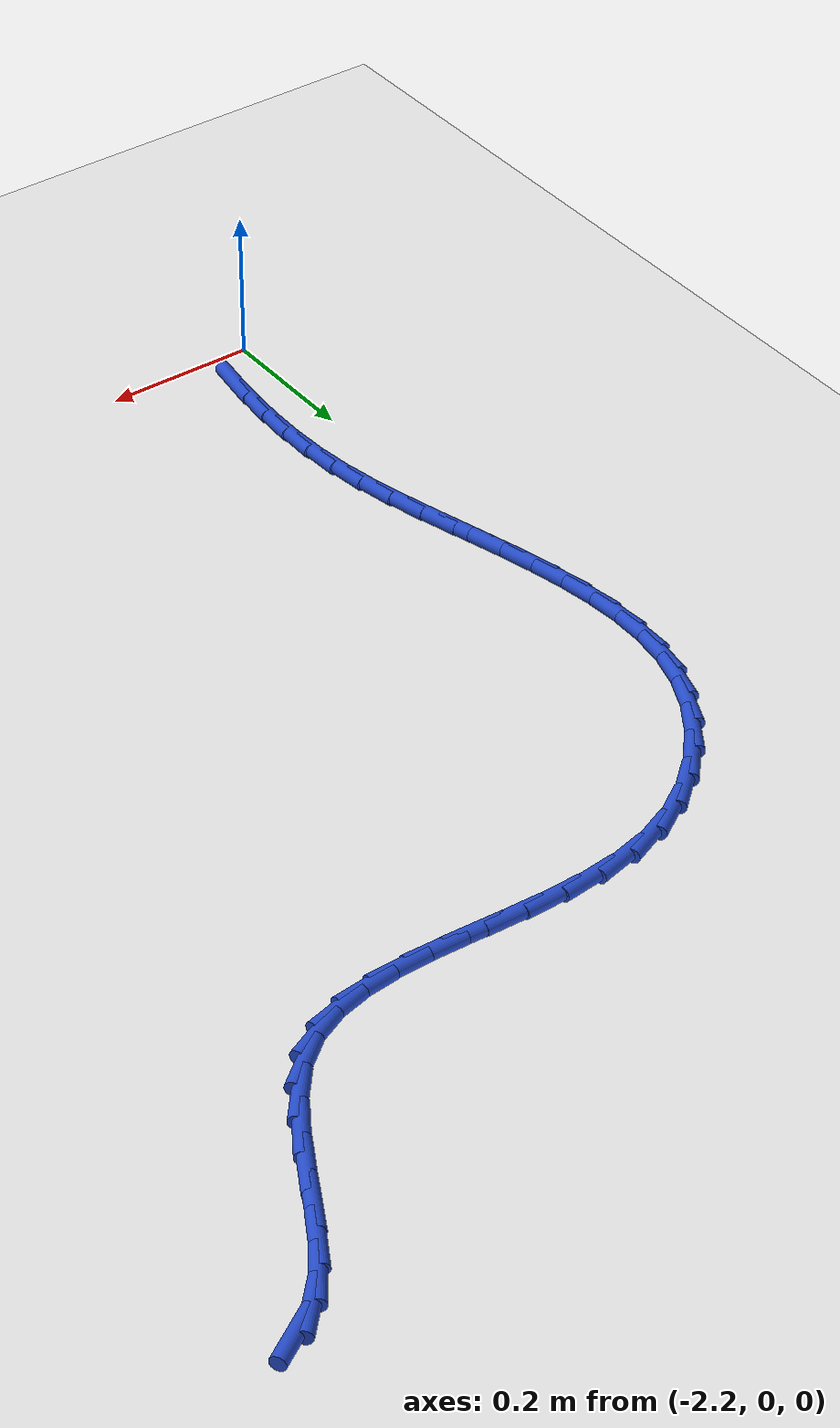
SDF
<sdf version="1.6">
 <world name="default">
  <model name="ground_plane">
   <static>1</static>
   <link name="link">
    <collision name="collision">
     <geometry><plane><normal>0 0 1</normal><size>100 100</size></plane></geometry>
     <surface><friction><ode><mu>100</mu><mu2>50</mu2></ode></friction></surface>
    </collision>
    <visual name="visual">
     <cast_shadows>0</cast_shadows>
     <geometry><plane><normal>0 0 1</normal><size>100 100</size></plane></geometry>
     <material>
      <script><uri>file://media/materials/scripts/gazebo.material</uri><name>Gazebo/WhiteGlow</name></script>
     </material>
    </visual>
   </link>
  </model>
  <model name="line">
   <link name="link_45">
    <pose>-1.2663418286828123 1.4529561932144455 0.01 0 1.57 0.5398186192638539</pose>
    <collision name="collision">
     <geometry><cylinder><radius>0.01</radius><length>0.08</length></cylinder></geometry>
    </collision>
    <visual name="visual">
     <material>
      <script><name>Gazebo/Blue</name><uri>file://media/materials/scripts/gazebo.material</uri></script>
     </material>
     <geometry><cylinder><radius>0.01</radius><length>0.08</length></cylinder></geometry>
    </visual>
   </link>
   <link name="link_46">
    <pose>-1.3000085020764252 1.4327836916100332 0.01 0 1.57 0.7994982813043418</pose>
    <collision name="collision">
     <geometry><cylinder><radius>0.01</radius><length>0.08</length></cylinder></geometry>
    </collision>
    <visual name="visual">
     <material>
      <script><name>Gazebo/Blue</name><uri>file://media/materials/scripts/gazebo.material</uri></script>
     </material>
     <geometry><cylinder><radius>0.01</radius><length>0.08</length></cylinder></geometry>
    </visual>
   </link>
   <link name="link_47">
    <pose>-1.3297077006797173 1.4022349334101647 0.01 0 1.57 0.9632050527010525</pose>
    <collision name="collision">
     <geometry><cylinder><radius>0.01</radius><length>0.08</length></cylinder></geometry>
    </collision>
    <visual name="visual">
     <material>
      <script><name>Gazebo/Blue</name><uri>file://media/materials/scripts/gazebo.material</uri></script>
     </material>
     <geometry><cylinder><radius>0.01</radius><length>0.08</length></cylinder></geometry>
    </visual>
   </link>
   <link name="link_48">
    <pose>-1.3564979605696286 1.363706618796815 0.01 0 1.57 1.0490110748656216</pose>
    <collision name="collision">
     <geometry><cylinder><radius>0.01</radius><length>0.08</length></cylinder></geometry>
    </collision>
    <visual name="visual">
     <material>
      <script><name>Gazebo/Blue</name><uri>file://media/materials/scripts/gazebo.material</uri></script>
     </material>
     <geometry><cylinder><radius>0.01</radius><length>0.08</length></cylinder></geometry>
    </visual>
   </link>
   <link name="link_49">
    <pose>-1.3816116969503112 1.3200255997518338 0.01 0 1.57 1.0785972706311933</pose>
    <collision name="collision">
     <geometry><cylinder><radius>0.01</radius><length>0.08</length></cylinder></geometry>
    </collision>
    <visual name="visual">
     <material>
      <script><name>Gazebo/Blue</name><uri>file://media/materials/scripts/gazebo.material</uri></script>
     </material>
     <geometry><cylinder><radius>0.01</radius><length>0.08</length></cylinder></geometry>
    </visual>
   </link>
   <link name="link_50">
    <pose>-1.406281325025917 1.2740187282570699 0.01 0 1.57 1.0607322408314315</pose>
    <collision name="collision">
     <geometry><cylinder><radius>0.01</radius><length>0.08</length></cylinder></geometry>
    </collision>
    <visual name="visual">
     <material>
      <script><name>Gazebo/Blue</name><uri>file://media/materials/scripts/gazebo.material</uri></script>
     </material>
     <geometry><cylinder><radius>0.01</radius><length>0.08</length></cylinder></geometry>
    </visual>
   </link>
   <link name="link_51">
    <pose>-1.431739260000597 1.228512856294374 0.01 0 1.57 0.9933727275090164</pose>
    <collision name="collision">
     <geometry><cylinder><radius>0.01</radius><length>0.08</length></cylinder></geometry>
    </collision>
    <visual name="visual">
     <material>
      <script><name>Gazebo/Blue</name><uri>file://media/materials/scripts/gazebo.material</uri></script>
     </material>
     <geometry><cylinder><radius>0.01</radius><length>0.08</length></cylinder></geometry>
    </visual>
   </link>
   <link name="link_52">
    <pose>-1.4592179170785027 1.1863348358455943 0.01 0 1.57 0.8645004404029248</pose>
    <collision name="collision">
     <geometry><cylinder><radius>0.01</radius><length>0.08</length></cylinder></geometry>
    </collision>
    <visual name="visual">
     <material>
      <script><name>Gazebo/Blue</name><uri>file://media/materials/scripts/gazebo.material</uri></script>
     </material>
     <geometry><cylinder><radius>0.01</radius><length>0.08</length></cylinder></geometry>
    </visual>
   </link>
   <link name="link_53">
    <pose>-1.489949711463786 1.1503115188925819 0.01 0 1.57 0.657821341731498</pose>
    <collision name="collision">
     <geometry><cylinder><radius>0.01</radius><length>0.08</length></cylinder></geometry>
    </collision>
    <visual name="visual">
     <material>
      <script><name>Gazebo/Blue</name><uri>file://media/materials/scripts/gazebo.material</uri></script>
     </material>
     <geometry><cylinder><radius>0.01</radius><length>0.08</length></cylinder></geometry>
    </visual>
   </link>
   <link name="link_54">
    <pose>-1.5251125351433734 1.123144023288106 0.01 0 1.57 0.4234418613173065</pose>
    <collision name="collision">
     <geometry><cylinder><radius>0.01</radius><length>0.08</length></cylinder></geometry>
    </collision>
    <visual name="visual">
     <material>
      <script><name>Gazebo/Blue</name><uri>file://media/materials/scripts/gazebo.material</uri></script>
     </material>
     <geometry><cylinder><radius>0.01</radius><length>0.08</length></cylinder></geometry>
    </visual>
   </link>
   <link name="link_55">
    <pose>-1.5648810920524108 1.105220049181201 0.01 0 1.57 0.23216177421498163</pose>
    <collision name="collision">
     <geometry><cylinder><radius>0.01</radius><length>0.08</length></cylinder></geometry>
    </collision>
    <visual name="visual">
     <material>
      <script><name>Gazebo/Blue</name><uri>file://media/materials/scripts/gazebo.material</uri></script>
     </material>
     <geometry><cylinder><radius>0.01</radius><length>0.08</length></cylinder></geometry>
    </visual>
   </link>
   <link name="link_56">
    <pose>-1.6085491644997822 1.0948958334452192 0.01 0 1.57 0.09446770056954061</pose>
    <collision name="collision">
     <geometry><cylinder><radius>0.01</radius><length>0.08</length></cylinder></geometry>
    </collision>
    <visual name="visual">
     <material>
      <script><name>Gazebo/Blue</name><uri>file://media/materials/scripts/gazebo.material</uri></script>
     </material>
     <geometry><cylinder><radius>0.01</radius><length>0.08</length></cylinder></geometry>
    </visual>
   </link>
   <link name="link_57">
    <pose>-1.6553805944229403 1.0904585684855226 0.01 0 1.57 0.005341587435091712</pose>
    <collision name="collision">
     <geometry><cylinder><radius>0.01</radius><length>0.08</length></cylinder></geometry>
    </collision>
    <visual name="visual">
     <material>
      <script><name>Gazebo/Blue</name><uri>file://media/materials/scripts/gazebo.material</uri></script>
     </material>
     <geometry><cylinder><radius>0.01</radius><length>0.08</length></cylinder></geometry>
    </visual>
   </link>
   <link name="link_58">
    <pose>-1.7046392237593366 1.0901954467074724 0.01 0 1.57 -0.043118067844145326</pose>
    <collision name="collision">
     <geometry><cylinder><radius>0.01</radius><length>0.08</length></cylinder></geometry>
    </collision>
    <visual name="visual">
     <material>
      <script><name>Gazebo/Blue</name><uri>file://media/materials/scripts/gazebo.material</uri></script>
     </material>
     <geometry><cylinder><radius>0.01</radius><length>0.08</length></cylinder></geometry>
    </visual>
   </link>
   <link name="link_59">
    <pose>-1.7555888944464226 1.0923936605164308 0.01 0 1.57 -0.05671144065306227</pose>
    <collision name="collision">
     <geometry><cylinder><radius>0.01</radius><length>0.08</length></cylinder></geometry>
    </collision>
    <visual name="visual">
     <material>
      <script><name>Gazebo/Blue</name><uri>file://media/materials/scripts/gazebo.material</uri></script>
     </material>
     <geometry><cylinder><radius>0.01</radius><length>0.08</length></cylinder></geometry>
    </visual>
   </link>
   <link name="link_60">
    <pose>-1.807493448421651 1.0953404023177602 0.01 0 1.57 -0.038015779506397666</pose>
    <collision name="collision">
     <geometry><cylinder><radius>0.01</radius><length>0.08</length></cylinder></geometry>
    </collision>
    <visual name="visual">
     <material>
      <script><name>Gazebo/Blue</name><uri>file://media/materials/scripts/gazebo.material</uri></script>
     </material>
     <geometry><cylinder><radius>0.01</radius><length>0.08</length></cylinder></geometry>
    </visual>
   </link>
   <link name="link_61">
    <pose>-1.8596167276224738 1.0973228645168218 0.01 0 1.57 0.013459386897508295</pose>
    <collision name="collision">
     <geometry><cylinder><radius>0.01</radius><length>0.08</length></cylinder></geometry>
    </collision>
    <visual name="visual">
     <material>
      <script><name>Gazebo/Blue</name><uri>file://media/materials/scripts/gazebo.material</uri></script>
     </material>
     <geometry><cylinder><radius>0.01</radius><length>0.08</length></cylinder></geometry>
    </visual>
   </link>
   <link name="link_62">
    <pose>-1.911222573986342 1.096628239518978 0.01 0 1.57 0.10063785307828729</pose>
    <collision name="collision">
     <geometry><cylinder><radius>0.01</radius><length>0.08</length></cylinder></geometry>
    </collision>
    <visual name="visual">
     <material>
      <script><name>Gazebo/Blue</name><uri>file://media/materials/scripts/gazebo.material</uri></script>
     </material>
     <geometry><cylinder><radius>0.01</radius><length>0.08</length></cylinder></geometry>
    </visual>
   </link>
   <link name="link_63">
    <pose>-1.9615748294507087 1.0915437197295907 0.01 0 1.57 0.22732184701287741</pose>
    <collision name="collision">
     <geometry><cylinder><radius>0.01</radius><length>0.08</length></cylinder></geometry>
    </collision>
    <visual name="visual">
     <material>
      <script><name>Gazebo/Blue</name><uri>file://media/materials/scripts/gazebo.material</uri></script>
     </material>
     <geometry><cylinder><radius>0.01</radius><length>0.08</length></cylinder></geometry>
    </visual>
   </link>
   <link name="link_64">
    <pose>-2.009937335953025 1.0803564975540216 0.01 0 1.57 0.39228975317552417</pose>
    <collision name="collision">
     <geometry><cylinder><radius>0.01</radius><length>0.08</length></cylinder></geometry>
    </collision>
    <visual name="visual">
     <material>
      <script><name>Gazebo/Blue</name><uri>file://media/materials/scripts/gazebo.material</uri></script>
     </material>
     <geometry><cylinder><radius>0.01</radius><length>0.08</length></cylinder></geometry>
    </visual>
   </link>
   <link name="link_65">
    <pose>-2.0555713598951235 1.0614761463930935 0.01 0 1.57 0.5612290174973782</pose>
    <collision name="collision">
     <geometry><cylinder><radius>0.01</radius><length>0.08</length></cylinder></geometry>
    </collision>
    <visual name="visual">
     <material>
      <script><name>Gazebo/Blue</name><uri>file://media/materials/scripts/gazebo.material</uri></script>
     </material>
     <geometry><cylinder><radius>0.01</radius><length>0.08</length></cylinder></geometry>
    </visual>
   </link>
   <link name="link_66">
    <pose>-2.097702866647926 1.0349896287199445 0.01 0 1.57 0.7141424548129879</pose>
    <collision name="collision">
     <geometry><cylinder><radius>0.01</radius><length>0.08</length></cylinder></geometry>
    </collision>
    <visual name="visual">
     <material>
      <script><name>Gazebo/Blue</name><uri>file://media/materials/scripts/gazebo.material</uri></script>
     </material>
     <geometry><cylinder><radius>0.01</radius><length>0.08</length></cylinder></geometry>
    </visual>
   </link>
   <link name="link_67">
    <pose>-2.1355322124897413 1.0022007669971567 0.01 0 1.57 0.8566821413677169</pose>
    <collision name="collision">
     <geometry><cylinder><radius>0.01</radius><length>0.08</length></cylinder></geometry>
    </collision>
    <visual name="visual">
     <material>
      <script><name>Gazebo/Blue</name><uri>file://media/materials/scripts/gazebo.material</uri></script>
     </material>
     <geometry><cylinder><radius>0.01</radius><length>0.08</length></cylinder></geometry>
    </visual>
   </link>
   <link name="link_68">
    <pose>-2.1682591793660575 0.9644406740970677 0.01 0 1.57 0.9958788411107538</pose>
    <collision name="collision">
     <geometry><cylinder><radius>0.01</radius><length>0.08</length></cylinder></geometry>
    </collision>
    <visual name="visual">
     <material>
      <script><name>Gazebo/Blue</name><uri>file://media/materials/scripts/gazebo.material</uri></script>
     </material>
     <geometry><cylinder><radius>0.01</radius><length>0.08</length></cylinder></geometry>
    </visual>
   </link>
   <link name="link_69">
    <pose>-2.1950835492223617 0.9230404628920175 0.01 0 1.57 1.1393683113650093</pose>
    <collision name="collision">
     <geometry><cylinder><radius>0.01</radius><length>0.08</length></cylinder></geometry>
    </collision>
    <visual name="visual">
     <material>
      <script><name>Gazebo/Blue</name><uri>file://media/materials/scripts/gazebo.material</uri></script>
     </material>
     <geometry><cylinder><radius>0.01</radius><length>0.08</length></cylinder></geometry>
    </visual>
   </link>
   <link name="link_70">
    <pose>-2.215205113431188 0.8793312395615878 0.01 0 1.57 1.2904233244219105</pose>
    <collision name="collision">
     <geometry><cylinder><radius>0.01</radius><length>0.08</length></cylinder></geometry>
    </collision>
    <visual name="visual">
     <material>
      <script><name>Gazebo/Blue</name><uri>file://media/materials/scripts/gazebo.material</uri></script>
     </material>
     <geometry><cylinder><radius>0.01</radius><length>0.08</length></cylinder></geometry>
    </visual>
   </link>
   <link name="link_71">
    <pose>-2.2281372474664867 0.8344214804271715 0.01 0 1.57 1.4320874877064045</pose>
    <collision name="collision">
     <geometry><cylinder><radius>0.01</radius><length>0.08</length></cylinder></geometry>
    </collision>
    <visual name="visual">
     <material>
      <script><name>Gazebo/Blue</name><uri>file://media/materials/scripts/gazebo.material</uri></script>
     </material>
     <geometry><cylinder><radius>0.01</radius><length>0.08</length></cylinder></geometry>
    </visual>
   </link>
   <link name="link_72">
    <pose>-2.2345326646762285 0.7886107858876283 0.01 0 1.57 1.554270748800596</pose>
    <collision name="collision">
     <geometry><cylinder><radius>0.01</radius><length>0.08</length></cylinder></geometry>
    </collision>
    <visual name="visual">
     <material>
      <script><name>Gazebo/Blue</name><uri>file://media/materials/scripts/gazebo.material</uri></script>
     </material>
     <geometry><cylinder><radius>0.01</radius><length>0.08</length></cylinder></geometry>
    </visual>
   </link>
   <link name="link_73">
    <pose>-2.2353027552890388 0.7420151080095314 0.01 0 1.57 -1.4875475170289387</pose>
    <collision name="collision">
     <geometry><cylinder><radius>0.01</radius><length>0.08</length></cylinder></geometry>
    </collision>
    <visual name="visual">
     <material>
      <script><name>Gazebo/Blue</name><uri>file://media/materials/scripts/gazebo.material</uri></script>
     </material>
     <geometry><cylinder><radius>0.01</radius><length>0.08</length></cylinder></geometry>
    </visual>
   </link>
   <link name="link_74">
    <pose>-2.231358909533541 0.6947503988594538 0.01 0 1.57 -1.410193427646849</pose>
    <collision name="collision">
     <geometry><cylinder><radius>0.01</radius><length>0.08</length></cylinder></geometry>
    </collision>
    <visual name="visual">
     <material>
      <script><name>Gazebo/Blue</name><uri>file://media/materials/scripts/gazebo.material</uri></script>
     </material>
     <geometry><cylinder><radius>0.01</radius><length>0.08</length></cylinder></geometry>
    </visual>
   </link>
   <link name="link_75">
    <pose>-2.2236125176383594 0.6469326105039694 0.01 0 1.57 -1.3538217442908465</pose>
    <collision name="collision">
     <geometry><cylinder><radius>0.01</radius><length>0.08</length></cylinder></geometry>
    </collision>
    <visual name="visual">
     <material>
      <script><name>Gazebo/Blue</name><uri>file://media/materials/scripts/gazebo.material</uri></script>
     </material>
     <geometry><cylinder><radius>0.01</radius><length>0.08</length></cylinder></geometry>
    </visual>
   </link>
   <link name="link_76">
    <pose>-2.2129749698321164 0.5986776950096513 0.01 0 1.57 -1.316668740241282</pose>
    <collision name="collision">
     <geometry><cylinder><radius>0.01</radius><length>0.08</length></cylinder></geometry>
    </collision>
    <visual name="visual">
     <material>
      <script><name>Gazebo/Blue</name><uri>file://media/materials/scripts/gazebo.material</uri></script>
     </material>
     <geometry><cylinder><radius>0.01</radius><length>0.08</length></cylinder></geometry>
    </visual>
   </link>
   <link name="link_77">
    <pose>-2.2003576563434373 0.5501016044430723 0.01 0 1.57 -1.2972759444066857</pose>
    <collision name="collision">
     <geometry><cylinder><radius>0.01</radius><length>0.08</length></cylinder></geometry>
    </collision>
    <visual name="visual">
     <material>
      <script><name>Gazebo/Blue</name><uri>file://media/materials/scripts/gazebo.material</uri></script>
     </material>
     <geometry><cylinder><radius>0.01</radius><length>0.08</length></cylinder></geometry>
    </visual>
   </link>
   <link name="link_78">
    <pose>-2.186671967400946 0.5013202908708065 0.01 0 1.57 -1.2947749134154225</pose>
    <collision name="collision">
     <geometry><cylinder><radius>0.01</radius><length>0.08</length></cylinder></geometry>
    </collision>
    <visual name="visual">
     <material>
      <script><name>Gazebo/Blue</name><uri>file://media/materials/scripts/gazebo.material</uri></script>
     </material>
     <geometry><cylinder><radius>0.01</radius><length>0.08</length></cylinder></geometry>
    </visual>
   </link>
   <link name="link_79">
    <pose>-2.1728292932332645 0.4524497063594265 0.01 0 1.57 -1.3089857701829382</pose>
    <collision name="collision">
     <geometry><cylinder><radius>0.01</radius><length>0.08</length></cylinder></geometry>
    </collision>
    <visual name="visual">
     <material>
      <script><name>Gazebo/Blue</name><uri>file://media/materials/scripts/gazebo.material</uri></script>
     </material>
     <geometry><cylinder><radius>0.01</radius><length>0.08</length></cylinder></geometry>
    </visual>
   </link>
   <link name="link_80">
    <pose>-2.159741024069018 0.4036058029755064 0.01 0 1.57 -1.3404188184969796</pose>
    <collision name="collision">
     <geometry><cylinder><radius>0.01</radius><length>0.08</length></cylinder></geometry>
    </collision>
    <visual name="visual">
     <material>
      <script><name>Gazebo/Blue</name><uri>file://media/materials/scripts/gazebo.material</uri></script>
     </material>
     <geometry><cylinder><radius>0.01</radius><length>0.08</length></cylinder></geometry>
    </visual>
   </link>
   <link name="link_81">
    <pose>-2.1483185501368296 0.3549045327856191 0.01 0 1.57 -1.3901930392094646</pose>
    <collision name="collision">
     <geometry><cylinder><radius>0.01</radius><length>0.08</length></cylinder></geometry>
    </collision>
    <visual name="visual">
     <material>
      <script><name>Gazebo/Blue</name><uri>file://media/materials/scripts/gazebo.material</uri></script>
     </material>
     <geometry><cylinder><radius>0.01</radius><length>0.08</length></cylinder></geometry>
    </visual>
   </link>
   <link name="link_82">
    <pose>-2.1394732616653243 0.30646184785633757 0.01 0 1.57 -1.4570507985117958</pose>
    <collision name="collision">
     <geometry><cylinder><radius>0.01</radius><length>0.08</length></cylinder></geometry>
    </collision>
    <visual name="visual">
     <material>
      <script><name>Gazebo/Blue</name><uri>file://media/materials/scripts/gazebo.material</uri></script>
     </material>
     <geometry><cylinder><radius>0.01</radius><length>0.08</length></cylinder></geometry>
    </visual>
   </link>
   <link name="link_83">
    <pose>-2.13397983704595 0.25837457049239226 0.01 0 1.57 -1.5243254817757086</pose>
    <collision name="collision">
     <geometry><cylinder><radius>0.01</radius><length>0.08</length></cylinder></geometry>
    </collision>
    <visual name="visual">
     <material>
      <script><name>Gazebo/Blue</name><uri>file://media/materials/scripts/gazebo.material</uri></script>
     </material>
     <geometry><cylinder><radius>0.01</radius><length>0.08</length></cylinder></geometry>
    </visual>
   </link>
   <link name="link_84">
    <pose>-2.131759044680205 0.21062003740691143 0.01 0 1.57 1.5572460743168335</pose>
    <collision name="collision">
     <geometry><cylinder><radius>0.01</radius><length>0.08</length></cylinder></geometry>
    </collision>
    <visual name="visual">
     <material>
      <script><name>Gazebo/Blue</name><uri>file://media/materials/scripts/gazebo.material</uri></script>
     </material>
     <geometry><cylinder><radius>0.01</radius><length>0.08</length></cylinder></geometry>
    </visual>
   </link>
   <link name="link_85">
    <pose>-2.132402592289365 0.16312954063558616 0.01 0 1.57 1.5053674358403473</pose>
    <collision name="collision">
     <geometry><cylinder><radius>0.01</radius><length>0.08</length></cylinder></geometry>
    </collision>
    <visual name="visual">
     <material>
      <script><name>Gazebo/Blue</name><uri>file://media/materials/scripts/gazebo.material</uri></script>
     </material>
     <geometry><cylinder><radius>0.01</radius><length>0.08</length></cylinder></geometry>
    </visual>
   </link>
   <link name="link_86">
    <pose>-2.1355014924021956 0.11583427493747384 0.01 0 1.57 1.4621440461145194</pose>
    <collision name="collision">
     <geometry><cylinder><radius>0.01</radius><length>0.08</length></cylinder></geometry>
    </collision>
    <visual name="visual">
     <material>
      <script><name>Gazebo/Blue</name><uri>file://media/materials/scripts/gazebo.material</uri></script>
     </material>
     <geometry><cylinder><radius>0.01</radius><length>0.08</length></cylinder></geometry>
    </visual>
   </link>
   <link name="link_87">
    <pose>-2.1406467575474624 0.06866543507163242 0.01 0 1.57 1.427808000976461</pose>
    <collision name="collision">
     <geometry><cylinder><radius>0.01</radius><length>0.08</length></cylinder></geometry>
    </collision>
    <visual name="visual">
     <material>
      <script><name>Gazebo/Blue</name><uri>file://media/materials/scripts/gazebo.material</uri></script>
     </material>
     <geometry><cylinder><radius>0.01</radius><length>0.08</length></cylinder></geometry>
    </visual>
   </link>
  </model>
 </world>
</sdf>
